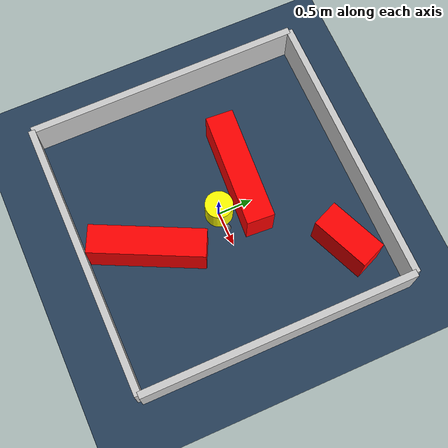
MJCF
<?xml version="1.0" ?>
<mujoco model="generated_environment">
  <option timestep="0.01" integrator="RK4" cone="elliptic"/>
  <default>
    <geom density="1"/>
  </default>
  <asset>
    <texture builtin="gradient" height="3072" rgb1="0.3 0.5 0.7" rgb2="0 0 0" type="skybox" width="512"/>
    <texture builtin="checker" height="300" mark="edge" markrgb="0.8 0.8 0.8" name="groundplane" rgb1="0.2 0.3 0.4" rgb2="0.1 0.2 0.3" type="2d" width="300"/>
    <material name="groundplane" reflectance="0.2" texrepeat="5 5" texture="groundplane" texuniform="true"/>
    <material name="robot" rgba="0.0 1.0 0.0 1"/>
  </asset>
  <worldbody>
    <light dir="0 0 -1" directional="true" pos="0 0 1.5"/>
    <geom condim="4" friction="1.0 0.005 0.001" material="groundplane" name="floor" size="0 0 0.05" type="plane"/>
    <body name="walls">
      <geom name="wall_1" condim="4" pos="-2.0 0.0 0.3" rgba="0.800000011920929 0.800000011920929 0.800000011920929 1.0" size="0.05 2.0 0.3" type="box"/>
      <geom name="wall_2" condim="4" pos="2.0 0.0 0.3" rgba="0.800000011920929 0.800000011920929 0.800000011920929 1.0" size="0.05 2.0 0.3" type="box"/>
      <geom name="wall_3" condim="4" pos="0.0 -2.0 0.3" rgba="0.800000011920929 0.800000011920929 0.800000011920929 1.0" size="2.0 0.05 0.3" type="box"/>
      <geom name="wall_4" condim="4" pos="0.0 2.0 0.3" rgba="0.800000011920929 0.800000011920929 0.800000011920929 1.0" size="2.0 0.05 0.3" type="box"/>
    </body>
    <body name="robot">
      <joint name="joint_x" type="slide" pos="0 0 0" axis="1 0 0"/>
      <joint name="joint_y" type="slide" pos="0 0 0" axis="0 1 0"/>
      <geom name="robot" type="sphere" pos="0.3 0.0 0.2" size="0.05" mass="5." friction="1.0 0.005 0.0001" condim="4" rgba="0.5 0.5 0.5 1.0"/>
      <site name="sensor_ball"/>
    </body>
    <body name="obstacle_movable_1">
      <geom name="obstacle_movable_1" condim="4" pos="0.0 0.0 0.2" euler="0 0 0.0" friction="1.0 0.005 0.001" rgba="1.0 1.0 0.0 1.0" size="0.2 0.2 0.0" type="cylinder" mass="0.1"/>
      <joint type="free"/>
    </body>
    <body name="obstacle_2_static">
      <geom name="obstacle_2_static" condim="4" pos="0.14332395328093583 -1.1250002218899393 0.3" euler="0 0 64.14357829824337" friction="1.0 0.005 0.001" rgba="1 0 0 1" size="0.8110154800482283 0.2 0.3" type="box"/>
    </body>
    <body name="obstacle_3_static">
      <geom name="obstacle_3_static" condim="4" pos="1.155828487374718 1.4111586566433194 0.3" euler="0 0 23.128776801923664" friction="1.0 0.005 0.001" rgba="1 0 0 1" size="0.43859290151878516 0.2 0.3" type="box"/>
    </body>
    <body name="obstacle_4_static">
      <geom name="obstacle_4_static" condim="4" pos="-0.34244931048154426 0.46286562647979745 0.3" euler="0 0 356.384616270231" friction="1.0 0.005 0.001" rgba="1 0 0 1" size="0.8321808081896418 0.2 0.3" type="box"/>
    </body>
  </worldbody>
  <actuator>
    <motor name="actuator_x" joint="joint_x" gear="1" ctrlrange="-1 1"/>
    <motor name="actuator_y" joint="joint_y" gear="1" ctrlrange="-1 1"/>
  </actuator>
</mujoco>
